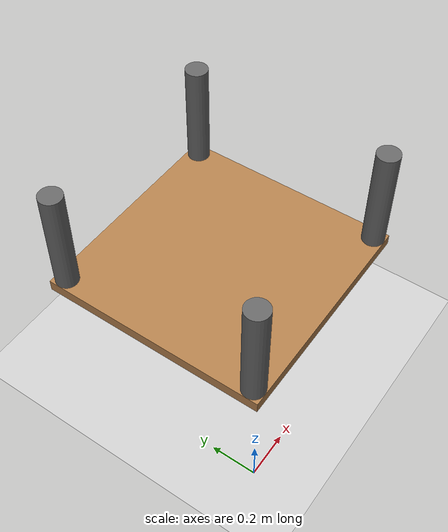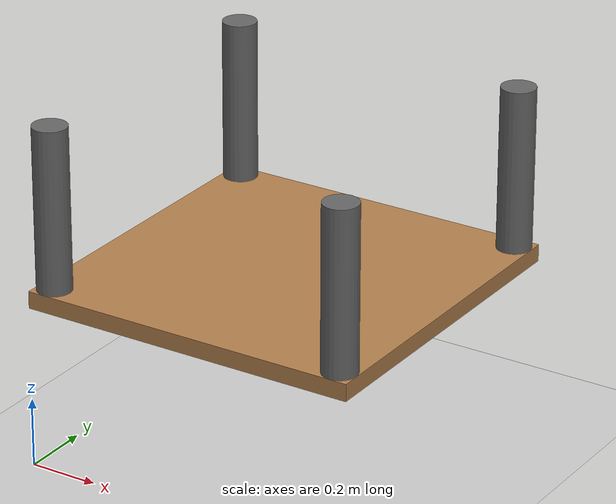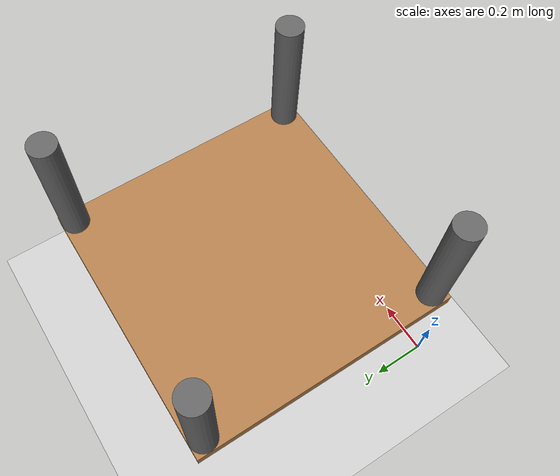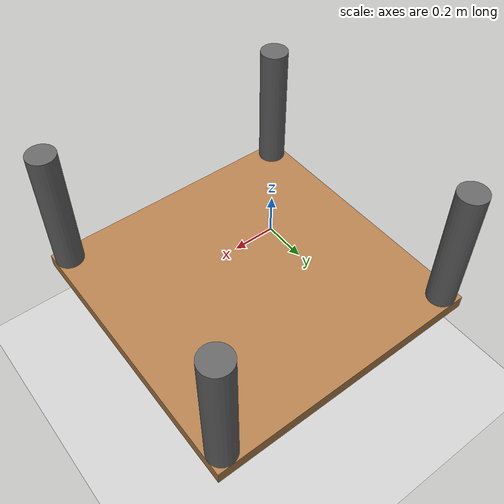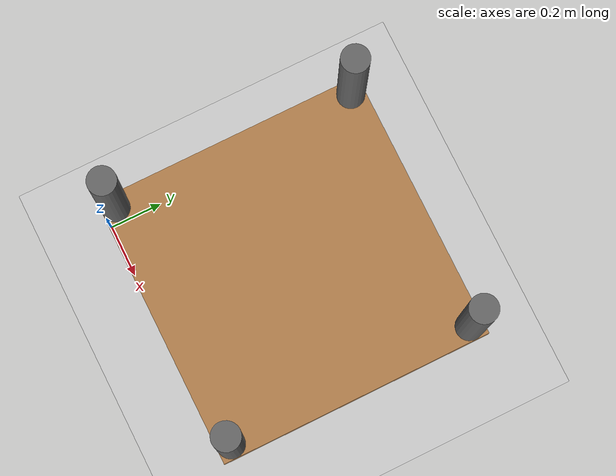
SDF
<sdf version="1.4">
 <world name="default">
  <model name="ground_plane">
   <static>1</static>
   <link name="link">
    <collision name="collision">
     <geometry><plane><normal>0 0 1</normal><size>100 100</size></plane></geometry>
     <surface><friction><ode><mu>100</mu><mu2>50</mu2></ode></friction></surface>
    </collision>
    <visual name="visual">
     <cast_shadows>0</cast_shadows>
     <geometry><plane><normal>0 0 1</normal><size>100 100</size></plane></geometry>
     <material>
      <script><uri>file://media/materials/scripts/gazebo.material</uri><name>Gazebo/Grey</name></script>
     </material>
    </visual>
    <velocity_decay><linear>0</linear><angular>0</angular></velocity_decay>
   </link>
  </model>
  <model name="table">
   <static>true</static>
   <link name="link">
    <pose>0.5 0.5 0.5 0 0 0</pose>
    <collision name="collision_blade">
     <geometry><box><size>1 1 0.05</size></box></geometry>
     <surface><friction><ode><mu>0.5</mu><mu2>0.5</mu2></ode></friction></surface>
    </collision>
    <visual name="visual_blade">
     <geometry><box><size>1 1 0.05</size></box></geometry>
     <material><ambient>0.2 0.1 0.1 1</ambient><diffuse>0.7 0.5 0.3 1</diffuse></material>
    </visual>
    <collision name="collision_leg_1">
     <geometry><cylinder><radius>0.05</radius><length>0.5</length></cylinder></geometry>
     <pose>-0.45 -0.45 0.25 0 0 0</pose>
    </collision>
    <visual name="visual_leg_1">
     <geometry><cylinder><radius>0.05</radius><length>0.5</length></cylinder></geometry>
     <pose>-0.45 -0.45 0.25 0 0 0</pose>
     <material><ambient>0.4 0.4 0.4 1</ambient><diffuse>0.4 0.4 0.4 1</diffuse></material>
    </visual>
    <collision name="collision_leg_2">
     <geometry><cylinder><radius>0.05</radius><length>0.5</length></cylinder></geometry>
     <pose>0.45 -0.45 0.25 0 0 0</pose>
    </collision>
    <visual name="visual_leg_2">
     <geometry><cylinder><radius>0.05</radius><length>0.5</length></cylinder></geometry>
     <pose>0.45 -0.45 0.25 0 0 0</pose>
     <material><ambient>0.4 0.4 0.4 1</ambient><diffuse>0.4 0.4 0.4 1</diffuse></material>
    </visual>
    <collision name="collision_leg_3">
     <geometry><cylinder><radius>0.05</radius><length>0.5</length></cylinder></geometry>
     <pose>-0.45 0.45 0.25 0 0 0</pose>
    </collision>
    <visual name="visual_leg_3">
     <geometry><cylinder><radius>0.05</radius><length>0.5</length></cylinder></geometry>
     <pose>-0.45 0.45 0.25 0 0 0</pose>
     <material><ambient>0.4 0.4 0.4 1</ambient><diffuse>0.4 0.4 0.4 1</diffuse></material>
    </visual>
    <collision name="collision_leg_4">
     <geometry><cylinder><radius>0.05</radius><length>0.5</length></cylinder></geometry>
     <pose>0.45 0.45 0.25 0 0 0</pose>
    </collision>
    <visual name="visual_leg_4">
     <geometry><cylinder><radius>0.05</radius><length>0.5</length></cylinder></geometry>
     <pose>0.45 0.45 0.25 0 0 0</pose>
     <material><ambient>0.4 0.4 0.4 1</ambient><diffuse>0.4 0.4 0.4 1</diffuse></material>
    </visual>
   </link>
  </model>
 </world>
</sdf>
